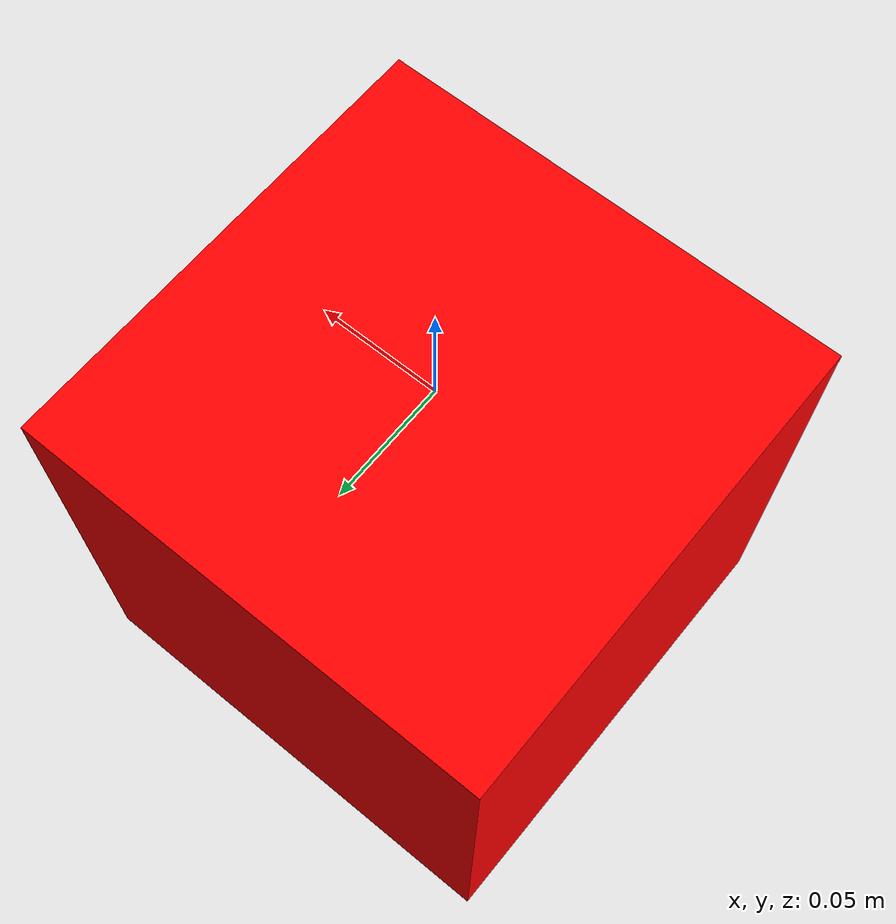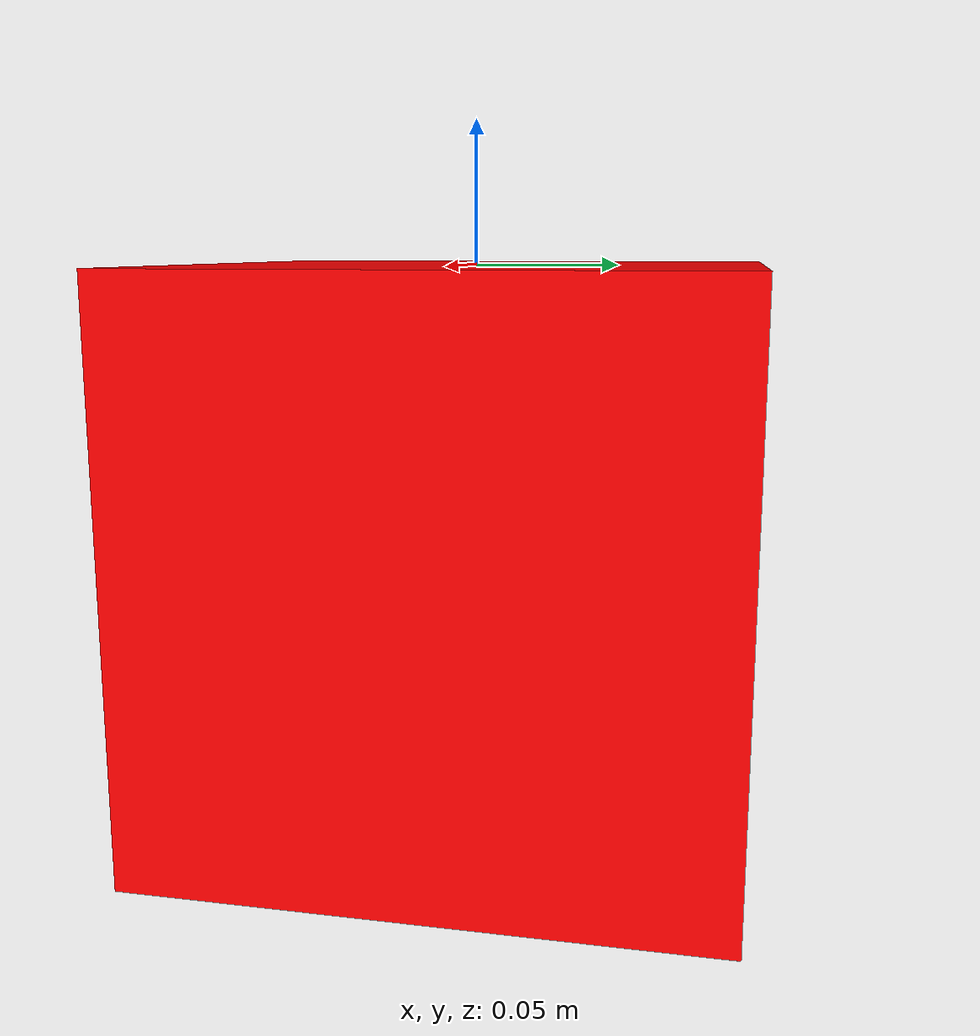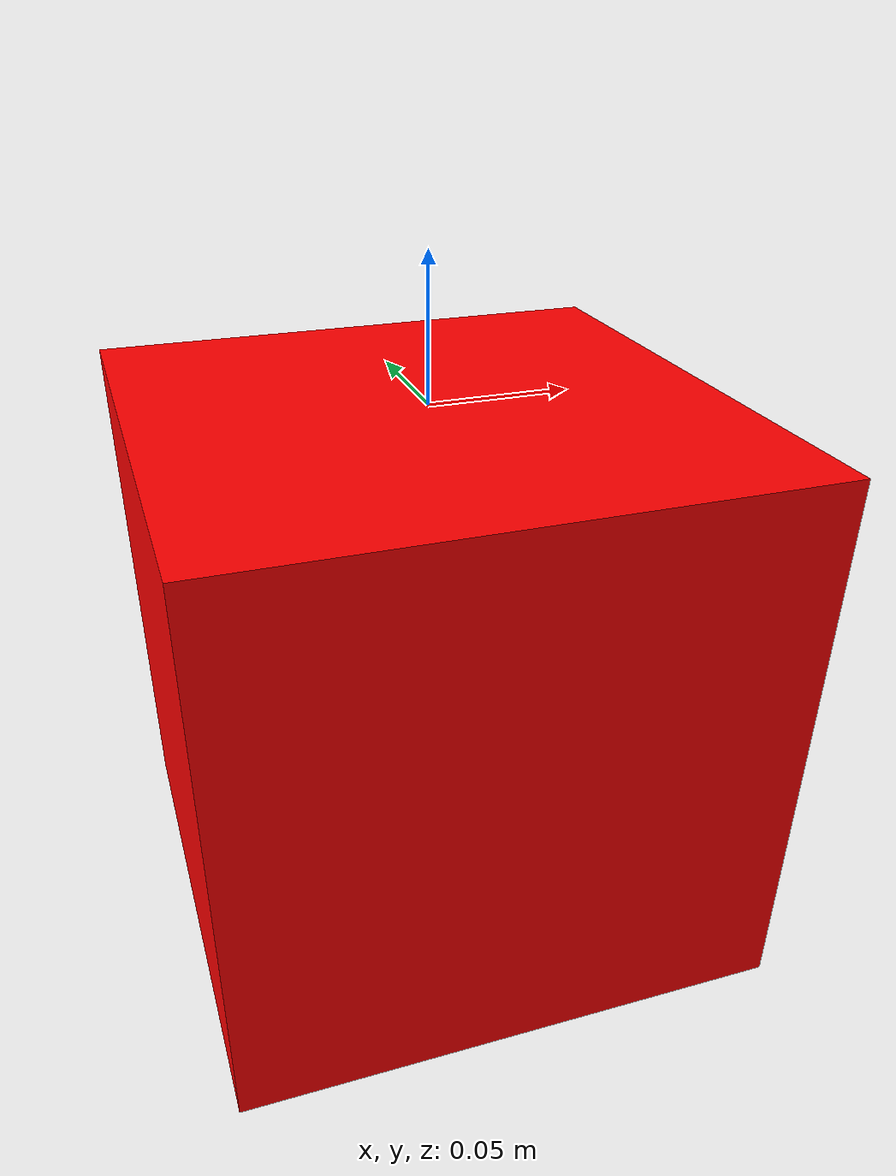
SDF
<?xml version="1.0" encoding="UTF-8"?>
<sdf version='1.9'>
  <model name="payload">
    <enable_wind>true</enable_wind>
    <link name="base_link">
      <pose>0 0 -0.1 0 0 0</pose>
      <collision name="base_link_collision">
        <geometry>
          <box>
          <size>0.2 0.2 0.2</size>
          </box>
        </geometry>
      </collision>
      <visual name="base_link_visual">
        <geometry>
          <box>
          <size>0.2 0.2 0.2</size>
          </box>
        </geometry>
        <material>
          <ambient>1 0 0 1</ambient> <!-- red -->
          <diffuse>1 0 0 1</diffuse>
          <specular>1 0 0 1</specular>
        </material>
      </visual>
      <inertial>
        <mass>0.5</mass> <!-- kg -->
        <inertia>
          <ixx>1/6*(0.2*0.2)</ixx>
          <iyy>1/6*(0.2*0.2)</iyy>
          <izz>1/6*(0.2*0.2)</izz>
        </inertia>
      </inertial>
    </link>
  </model>
</sdf>
